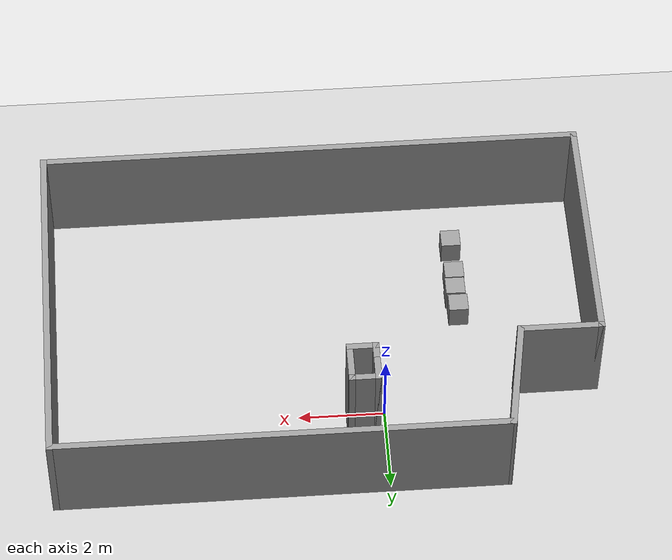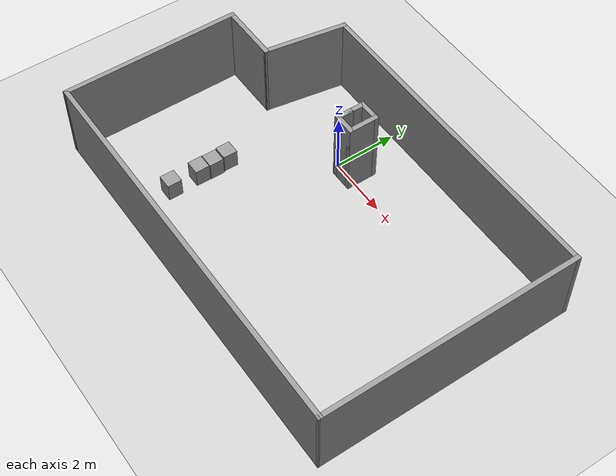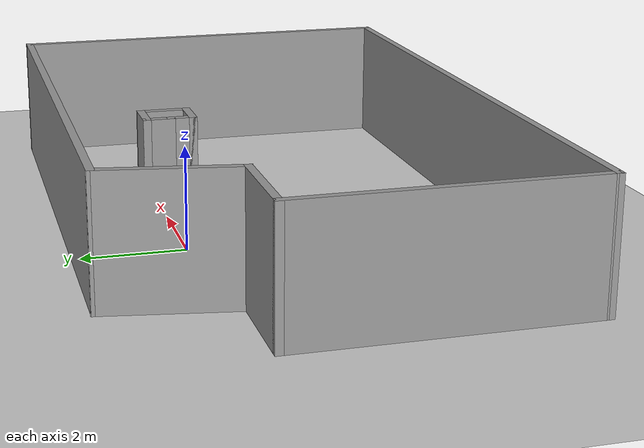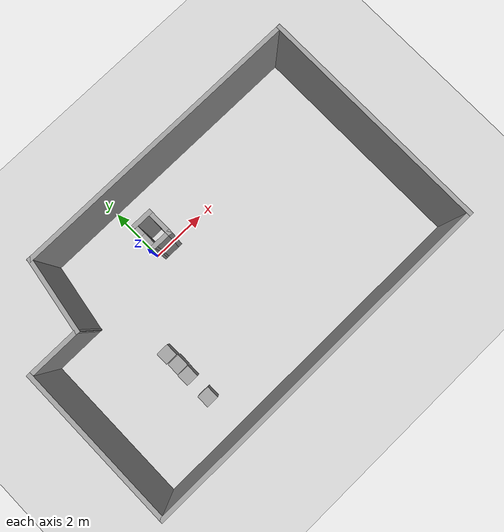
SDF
<sdf version="1.7">
 <world name="lab211_with_boxes_t1_1">
  <light name="sun" type="directional">
   <pose>0 0 10 0 -0 0</pose>
   <diffuse>0.8 0.8 0.8 1</diffuse>
   <specular>0.2 0.2 0.2 1</specular>
   <attenuation>
    <range>1000</range>
    <constant>0.9</constant>
    <linear>0.01</linear>
    <quadratic>0.001</quadratic>
   </attenuation>
   <direction>-0.5 0.1 -0.9</direction>
   <spot><inner_angle>0</inner_angle><outer_angle>0</outer_angle><falloff>0</falloff></spot>
  </light>
  <model name="ground_plane">
   <static>1</static>
   <link name="link">
    <collision name="collision">
     <geometry><plane><normal>0 0 1</normal><size>100 100</size></plane></geometry>
     <surface>
      <contact><collide_bitmask>65535</collide_bitmask></contact>
      <friction><ode><mu>100</mu><mu2>50</mu2></ode></friction>
     </surface>
    </collision>
    <visual name="visual">
     <cast_shadows>0</cast_shadows>
     <geometry><plane><normal>0 0 1</normal><size>100 100</size></plane></geometry>
     <material>
      <script><uri>file://media/materials/scripts/gazebo.material</uri><name>Gazebo/Grey</name></script>
      <ambient>0.9 0.9 0.9 1</ambient>
      <diffuse>0.9 0.9 0.9 1</diffuse>
      <specular>0.9 0.9 0.9 1</specular>
      <emissive>0.4 0.4 0.4 1</emissive>
     </material>
    </visual>
   </link>
  </model>
  <gravity>0 0 -9.8</gravity>
  <magnetic_field>6e-06 2.3e-05 -4.2e-05</magnetic_field>
  <atmosphere type="adiabatic"/>
  <physics type="ode">
   <max_step_size>0.001</max_step_size>
   <real_time_factor>1</real_time_factor>
   <real_time_update_rate>1000</real_time_update_rate>
  </physics>
  <scene><ambient>0.4 0.4 0.4 1</ambient><background>0.7 0.7 0.7 1</background><shadows>1</shadows></scene>
  <audio><device>default</device></audio>
  <spherical_coordinates>
   <surface_model>EARTH_WGS84</surface_model>
   <latitude_deg>0</latitude_deg>
   <longitude_deg>0</longitude_deg>
   <elevation>0</elevation>
   <heading_deg>0</heading_deg>
  </spherical_coordinates>
  <model name="lab211_1">
   <pose>1.34834 -1.97187 0 0 -0 0</pose>
   <link name="Wall_12">
    <collision name="Wall_12_Collision">
     <geometry><box><size>8.25 0.15 2.5</size></box></geometry>
     <pose>0 0 1.25 0 -0 0</pose>
    </collision>
    <visual name="Wall_12_Visual">
     <pose>0 0 1.25 0 -0 0</pose>
     <geometry><box><size>8.25 0.15 2.5</size></box></geometry>
     <material>
      <script><uri>file://media/materials/scripts/gazebo.material</uri><name>Gazebo/Grey</name></script>
      <ambient>0.9 0.9 0.9 1</ambient>
      <diffuse>0.9 0.9 0.9 1</diffuse>
      <specular>0.9 0.9 0.9 1</specular>
      <emissive>0.4 0.4 0.4 1</emissive>
      <ambient>0.9 0.9 0.9 1</ambient>
      <diffuse>0.9 0.9 0.9 1</diffuse>
      <specular>0.9 0.9 0.9 1</specular>
      <emissive>0.4 0.4 0.4 1</emissive>
     </material>
     <meta><layer>0</layer></meta>
    </visual>
    <pose>6.31146 3.1e-05 0 0 -0 1.5708</pose>
   </link>
   <link name="Wall_13">
    <collision name="Wall_13_Collision">
     <geometry><box><size>10.5 0.15 2.5</size></box></geometry>
     <pose>0 0 1.25 0 -0 0</pose>
    </collision>
    <visual name="Wall_13_Visual">
     <pose>0 0 1.25 0 -0 0</pose>
     <geometry><box><size>10.5 0.15 2.5</size></box></geometry>
     <material>
      <script><uri>file://media/materials/scripts/gazebo.material</uri><name>Gazebo/Grey</name></script>
      <ambient>0.9 0.9 0.9 1</ambient>
      <diffuse>0.9 0.9 0.9 1</diffuse>
      <specular>0.9 0.9 0.9 1</specular>
      <emissive>0.4 0.4 0.4 1</emissive>
     </material>
     <meta><layer>0</layer></meta>
    </visual>
    <pose>1.13646 4.05003 0 0 -0 3.14159</pose>
   </link>
   <link name="Wall_16">
    <collision name="Wall_16_Collision">
     <geometry><box><size>5.75 0.15 2.5</size></box></geometry>
     <pose>0 0 1.25 0 -0 0</pose>
    </collision>
    <visual name="Wall_16_Visual">
     <pose>0 0 1.25 0 -0 0</pose>
     <geometry><box><size>5.75 0.15 2.5</size></box></geometry>
     <material>
      <script><uri>file://media/materials/scripts/gazebo.material</uri><name>Gazebo/Grey</name></script>
      <ambient>0.9 0.9 0.9 1</ambient>
      <diffuse>0.9 0.9 0.9 1</diffuse>
      <specular>0.9 0.9 0.9 1</specular>
      <emissive>0.4 0.4 0.4 1</emissive>
     </material>
     <meta><layer>0</layer></meta>
    </visual>
    <pose>-6.31147 -1.26138 0 0 -0 -1.5708</pose>
   </link>
   <link name="Wall_18">
    <collision name="Wall_18_Collision">
     <geometry><box><size>12.7729 0.15 2.5</size></box></geometry>
     <pose>0 0 1.25 0 -0 0</pose>
    </collision>
    <visual name="Wall_18_Visual">
     <pose>0 0 1.25 0 -0 0</pose>
     <geometry><box><size>12.7729 0.15 2.5</size></box></geometry>
     <material>
      <script><uri>file://media/materials/scripts/gazebo.material</uri><name>Gazebo/Grey</name></script>
      <ambient>0.9 0.9 0.9 1</ambient>
      <diffuse>0.9 0.9 0.9 1</diffuse>
      <specular>0.9 0.9 0.9 1</specular>
      <emissive>0.4 0.4 0.4 1</emissive>
     </material>
     <meta><layer>0</layer></meta>
    </visual>
    <pose>-0 -4.05567 0 0 -0 0.000904</pose>
   </link>
   <link name="Wall_20">
    <collision name="Wall_20_Collision">
     <geometry><box><size>2 0.15 2.5</size></box></geometry>
     <pose>0 0 1.25 0 -0 0</pose>
    </collision>
    <visual name="Wall_20_Visual">
     <pose>0 0 1.25 0 -0 0</pose>
     <geometry><box><size>2 0.15 2.5</size></box></geometry>
     <material>
      <script><uri>file://media/materials/scripts/gazebo.material</uri><name>Gazebo/Grey</name></script>
      <ambient>0.9 0.9 0.9 1</ambient>
      <diffuse>0.9 0.9 0.9 1</diffuse>
      <specular>0.9 0.9 0.9 1</specular>
      <emissive>0.4 0.4 0.4 1</emissive>
     </material>
     <meta><layer>0</layer></meta>
    </visual>
    <pose>-5.38647 1.53862 0 0 -0 0</pose>
   </link>
   <link name="Wall_21">
    <collision name="Wall_21_Collision">
     <geometry><box><size>2.69677 0.15 2.5</size></box></geometry>
     <pose>0 0 1.25 0 -0 0</pose>
    </collision>
    <visual name="Wall_21_Visual">
     <pose>0 0 1.25 0 -0 0</pose>
     <geometry><box><size>2.69677 0.15 2.5</size></box></geometry>
     <material>
      <script><uri>file://media/materials/scripts/gazebo.material</uri><name>Gazebo/Grey</name></script>
      <ambient>0.9 0.9 0.9 1</ambient>
      <diffuse>0.9 0.9 0.9 1</diffuse>
      <specular>0.9 0.9 0.9 1</specular>
      <emissive>0.4 0.4 0.4 1</emissive>
     </material>
     <meta><layer>0</layer></meta>
    </visual>
    <pose>-4.25 2.79433 0 0 -0 1.40396</pose>
   </link>
   <static>1</static>
  </model>
  <model name="lab211_piller">
   <pose>0.447124 0.232964 0 0 -0 0</pose>
   <link name="Wall_28">
    <collision name="Wall_28_Collision">
     <geometry><box><size>0.5532 0.15 2.5</size></box></geometry>
     <pose>0 0 1.25 0 -0 0</pose>
    </collision>
    <visual name="Wall_28_Visual">
     <pose>0 0 1.25 0 -0 0</pose>
     <geometry><box><size>0.5532 0.15 2.5</size></box></geometry>
     <material>
      <script><uri>file://media/materials/scripts/gazebo.material</uri><name>Gazebo/Grey</name></script>
      <ambient>0.9 0.9 0.9 1</ambient>
      <diffuse>0.9 0.9 0.9 1</diffuse>
      <specular>0.9 0.9 0.9 1</specular>
      <emissive>0.4 0.4 0.4 1</emissive>
     </material>
     <meta><layer>0</layer></meta>
    </visual>
    <pose>-0.227876 -0.2234 0 0 -0 -1.5708</pose>
   </link>
   <link name="Wall_29">
    <collision name="Wall_29_Collision">
     <geometry><box><size>0.75 0.15 2.5</size></box></geometry>
     <pose>0 0 1.25 0 -0 0</pose>
    </collision>
    <visual name="Wall_29_Visual">
     <pose>0 0 1.25 0 -0 0</pose>
     <geometry><box><size>0.75 0.15 2.5</size></box></geometry>
     <material>
      <script><uri>file://media/materials/scripts/gazebo.material</uri><name>Gazebo/Grey</name></script>
      <ambient>0.9 0.9 0.9 1</ambient>
      <diffuse>0.9 0.9 0.9 1</diffuse>
      <specular>0.9 0.9 0.9 1</specular>
      <emissive>0.4 0.4 0.4 1</emissive>
     </material>
     <meta><layer>0</layer></meta>
    </visual>
    <pose>0.072124 -0.425 0 0 -0 0</pose>
   </link>
   <link name="Wall_30">
    <collision name="Wall_30_Collision">
     <geometry><box><size>1 0.15 2.5</size></box></geometry>
     <pose>0 0 1.25 0 -0 0</pose>
    </collision>
    <visual name="Wall_30_Visual">
     <pose>0 0 1.25 0 -0 0</pose>
     <geometry><box><size>1 0.15 2.5</size></box></geometry>
     <material>
      <script><uri>file://media/materials/scripts/gazebo.material</uri><name>Gazebo/Grey</name></script>
      <ambient>0.9 0.9 0.9 1</ambient>
      <diffuse>0.9 0.9 0.9 1</diffuse>
      <specular>0.9 0.9 0.9 1</specular>
      <emissive>0.4 0.4 0.4 1</emissive>
     </material>
     <meta><layer>0</layer></meta>
    </visual>
    <pose>0.372124 -0 0 0 -0 1.5708</pose>
   </link>
   <link name="Wall_31">
    <collision name="Wall_31_Collision">
     <geometry><box><size>0.75 0.15 2.5</size></box></geometry>
     <pose>0 0 1.25 0 -0 0</pose>
    </collision>
    <visual name="Wall_31_Visual">
     <pose>0 0 1.25 0 -0 0</pose>
     <geometry><box><size>0.75 0.15 2.5</size></box></geometry>
     <material>
      <script><uri>file://media/materials/scripts/gazebo.material</uri><name>Gazebo/Grey</name></script>
      <ambient>0.9 0.9 0.9 1</ambient>
      <diffuse>0.9 0.9 0.9 1</diffuse>
      <specular>0.9 0.9 0.9 1</specular>
      <emissive>0.4 0.4 0.4 1</emissive>
     </material>
     <meta><layer>0</layer></meta>
    </visual>
    <pose>0.072124 0.425 0 0 -0 3.14159</pose>
   </link>
   <link name="Wall_32">
    <collision name="Wall_32_Collision">
     <geometry><box><size>0.5968 0.15 2.5</size></box></geometry>
     <pose>0 0 1.25 0 -0 0</pose>
    </collision>
    <visual name="Wall_32_Visual">
     <pose>0 0 1.25 0 -0 0</pose>
     <geometry><box><size>0.5968 0.15 2.5</size></box></geometry>
     <material>
      <script><uri>file://media/materials/scripts/gazebo.material</uri><name>Gazebo/Grey</name></script>
      <ambient>0.9 0.9 0.9 1</ambient>
      <diffuse>0.9 0.9 0.9 1</diffuse>
      <specular>0.9 0.9 0.9 1</specular>
      <emissive>0.4 0.4 0.4 1</emissive>
     </material>
     <meta><layer>0</layer></meta>
    </visual>
    <pose>-0.227876 0.2016 0 0 -0 -1.5708</pose>
   </link>
   <static>1</static>
  </model>
  <model name="lab_box">
   <link name="link">
    <inertial>
     <mass>1</mass>
     <inertia>
      <ixx>0.166667</ixx>
      <ixy>0</ixy>
      <ixz>0</ixz>
      <iyy>0.166667</iyy>
      <iyz>0</iyz>
      <izz>0.166667</izz>
     </inertia>
    </inertial>
    <visual name="visual">
     <geometry><box><size>0.457 0.457 0.609</size></box></geometry>
     <material>
      <script><name>Gazebo/Grey</name><uri>file://media/materials/scripts/gazebo.material</uri></script>
      <shader type="pixel"><normal_map>__default__</normal_map></shader>
      <ambient>0.3 0.3 0.3 1</ambient>
      <diffuse>0.7 0.7 0.7 1</diffuse>
      <specular>0.01 0.01 0.01 1</specular>
      <emissive>0 0 0 1</emissive>
     </material>
    </visual>
    <collision name="collision">
     <geometry><box><size>0.457 0.457 0.609</size></box></geometry>
     <surface>
      <friction>
       <ode><mu>1</mu><mu2>1</mu2><fdir1>0 0 0</fdir1><slip1>0</slip1><slip2>0</slip2></ode>
       <torsional>
        <coefficient>1</coefficient>
        <patch_radius>0</patch_radius>
        <surface_radius>0</surface_radius>
        <use_patch_radius>1</use_patch_radius>
        <ode><slip>0</slip></ode>
       </torsional>
      </friction>
      <bounce><restitution_coefficient>0</restitution_coefficient><threshold>1e+06</threshold></bounce>
      <contact>
       <collide_without_contact>0</collide_without_contact>
       <collide_without_contact_bitmask>1</collide_without_contact_bitmask>
       <collide_bitmask>1</collide_bitmask>
       <ode>
        <soft_cfm>0</soft_cfm>
        <soft_erp>0.2</soft_erp>
        <kp>1e+13</kp>
        <kd>1</kd>
        <max_vel>0.01</max_vel>
        <min_depth>0</min_depth>
       </ode>
       <bullet>
        <split_impulse>1</split_impulse>
        <split_impulse_penetration_threshold>-0.01</split_impulse_penetration_threshold>
        <soft_cfm>0</soft_cfm>
        <soft_erp>0.2</soft_erp>
        <kp>1e+13</kp>
        <kd>1</kd>
       </bullet>
      </contact>
     </surface>
    </collision>
   </link>
   <static>0</static>
   <pose>-1.95932 -2.64808 0.3045 0 -0 0</pose>
  </model>
  <model name="lab_box_clone">
   <link name="link">
    <inertial>
     <mass>1</mass>
     <inertia>
      <ixx>0.166667</ixx>
      <ixy>0</ixy>
      <ixz>0</ixz>
      <iyy>0.166667</iyy>
      <iyz>0</iyz>
      <izz>0.166667</izz>
     </inertia>
    </inertial>
    <visual name="visual">
     <geometry><box><size>0.457 0.457 0.609</size></box></geometry>
     <material>
      <script><name>Gazebo/Grey</name><uri>file://media/materials/scripts/gazebo.material</uri></script>
      <shader type="pixel"><normal_map>__default__</normal_map></shader>
      <ambient>0.3 0.3 0.3 1</ambient>
      <diffuse>0.7 0.7 0.7 1</diffuse>
      <specular>0.01 0.01 0.01 1</specular>
      <emissive>0 0 0 1</emissive>
     </material>
    </visual>
    <collision name="collision">
     <geometry><box><size>0.457 0.457 0.609</size></box></geometry>
     <surface>
      <friction>
       <ode><mu>1</mu><mu2>1</mu2><fdir1>0 0 0</fdir1><slip1>0</slip1><slip2>0</slip2></ode>
       <torsional>
        <coefficient>1</coefficient>
        <patch_radius>0</patch_radius>
        <surface_radius>0</surface_radius>
        <use_patch_radius>1</use_patch_radius>
        <ode><slip>0</slip></ode>
       </torsional>
      </friction>
      <bounce><restitution_coefficient>0</restitution_coefficient><threshold>1e+06</threshold></bounce>
      <contact>
       <collide_without_contact>0</collide_without_contact>
       <collide_without_contact_bitmask>1</collide_without_contact_bitmask>
       <collide_bitmask>1</collide_bitmask>
       <ode>
        <soft_cfm>0</soft_cfm>
        <soft_erp>0.2</soft_erp>
        <kp>1e+13</kp>
        <kd>1</kd>
        <max_vel>0.01</max_vel>
        <min_depth>0</min_depth>
       </ode>
       <bullet>
        <split_impulse>1</split_impulse>
        <split_impulse_penetration_threshold>-0.01</split_impulse_penetration_threshold>
        <soft_cfm>0</soft_cfm>
        <soft_erp>0.2</soft_erp>
        <kp>1e+13</kp>
        <kd>1</kd>
       </bullet>
      </contact>
     </surface>
    </collision>
   </link>
   <static>0</static>
   <pose>-1.9452 -4.55775 0.3045 0 -0 0</pose>
  </model>
  <model name="lab_box_clone_clone">
   <link name="link">
    <inertial>
     <mass>1</mass>
     <inertia>
      <ixx>0.166667</ixx>
      <ixy>0</ixy>
      <ixz>0</ixz>
      <iyy>0.166667</iyy>
      <iyz>0</iyz>
      <izz>0.166667</izz>
     </inertia>
    </inertial>
    <visual name="visual">
     <geometry><box><size>0.457 0.457 0.609</size></box></geometry>
     <material>
      <script><name>Gazebo/Grey</name><uri>file://media/materials/scripts/gazebo.material</uri></script>
      <shader type="pixel"><normal_map>__default__</normal_map></shader>
      <ambient>0.3 0.3 0.3 1</ambient>
      <diffuse>0.7 0.7 0.7 1</diffuse>
      <specular>0.01 0.01 0.01 1</specular>
      <emissive>0 0 0 1</emissive>
     </material>
    </visual>
    <collision name="collision">
     <geometry><box><size>0.457 0.457 0.609</size></box></geometry>
     <surface>
      <friction>
       <ode><mu>1</mu><mu2>1</mu2><fdir1>0 0 0</fdir1><slip1>0</slip1><slip2>0</slip2></ode>
       <torsional>
        <coefficient>1</coefficient>
        <patch_radius>0</patch_radius>
        <surface_radius>0</surface_radius>
        <use_patch_radius>1</use_patch_radius>
        <ode><slip>0</slip></ode>
       </torsional>
      </friction>
      <bounce><restitution_coefficient>0</restitution_coefficient><threshold>1e+06</threshold></bounce>
      <contact>
       <collide_without_contact>0</collide_without_contact>
       <collide_without_contact_bitmask>1</collide_without_contact_bitmask>
       <collide_bitmask>1</collide_bitmask>
       <ode>
        <soft_cfm>0</soft_cfm>
        <soft_erp>0.2</soft_erp>
        <kp>1e+13</kp>
        <kd>1</kd>
        <max_vel>0.01</max_vel>
        <min_depth>0</min_depth>
       </ode>
       <bullet>
        <split_impulse>1</split_impulse>
        <split_impulse_penetration_threshold>-0.01</split_impulse_penetration_threshold>
        <soft_cfm>0</soft_cfm>
        <soft_erp>0.2</soft_erp>
        <kp>1e+13</kp>
        <kd>1</kd>
       </bullet>
      </contact>
     </surface>
    </collision>
   </link>
   <static>0</static>
   <pose>-1.94398 -3.61511 0.3045 0 -0 0</pose>
  </model>
  <model name="lab_box_clone_clone_clone">
   <link name="link">
    <inertial>
     <mass>1</mass>
     <inertia>
      <ixx>0.166667</ixx>
      <ixy>0</ixy>
      <ixz>0</ixz>
      <iyy>0.166667</iyy>
      <iyz>0</iyz>
      <izz>0.166667</izz>
     </inertia>
    </inertial>
    <visual name="visual">
     <geometry><box><size>0.457001 0.457 0.609</size></box></geometry>
     <material>
      <script><name>Gazebo/Grey</name><uri>file://media/materials/scripts/gazebo.material</uri></script>
      <shader type="pixel"><normal_map>__default__</normal_map></shader>
      <ambient>0.3 0.3 0.3 1</ambient>
      <diffuse>0.7 0.7 0.7 1</diffuse>
      <specular>0.01 0.01 0.01 1</specular>
      <emissive>0 0 0 1</emissive>
     </material>
    </visual>
    <collision name="collision">
     <geometry><box><size>0.457001 0.457 0.609</size></box></geometry>
     <surface>
      <friction>
       <ode><mu>1</mu><mu2>1</mu2><fdir1>0 0 0</fdir1><slip1>0</slip1><slip2>0</slip2></ode>
       <torsional>
        <coefficient>1</coefficient>
        <patch_radius>0</patch_radius>
        <surface_radius>0</surface_radius>
        <use_patch_radius>1</use_patch_radius>
        <ode><slip>0</slip></ode>
       </torsional>
      </friction>
      <bounce><restitution_coefficient>0</restitution_coefficient><threshold>1e+06</threshold></bounce>
      <contact>
       <collide_without_contact>0</collide_without_contact>
       <collide_without_contact_bitmask>1</collide_without_contact_bitmask>
       <collide_bitmask>1</collide_bitmask>
       <ode>
        <soft_cfm>0</soft_cfm>
        <soft_erp>0.2</soft_erp>
        <kp>1e+13</kp>
        <kd>1</kd>
        <max_vel>0.01</max_vel>
        <min_depth>0</min_depth>
       </ode>
       <bullet>
        <split_impulse>1</split_impulse>
        <split_impulse_penetration_threshold>-0.01</split_impulse_penetration_threshold>
        <soft_cfm>0</soft_cfm>
        <soft_erp>0.2</soft_erp>
        <kp>1e+13</kp>
        <kd>1</kd>
       </bullet>
      </contact>
     </surface>
    </collision>
   </link>
   <static>0</static>
   <pose>-1.92883 -3.14223 0.3045 0 -0 0</pose>
  </model>
 </world>
</sdf>
